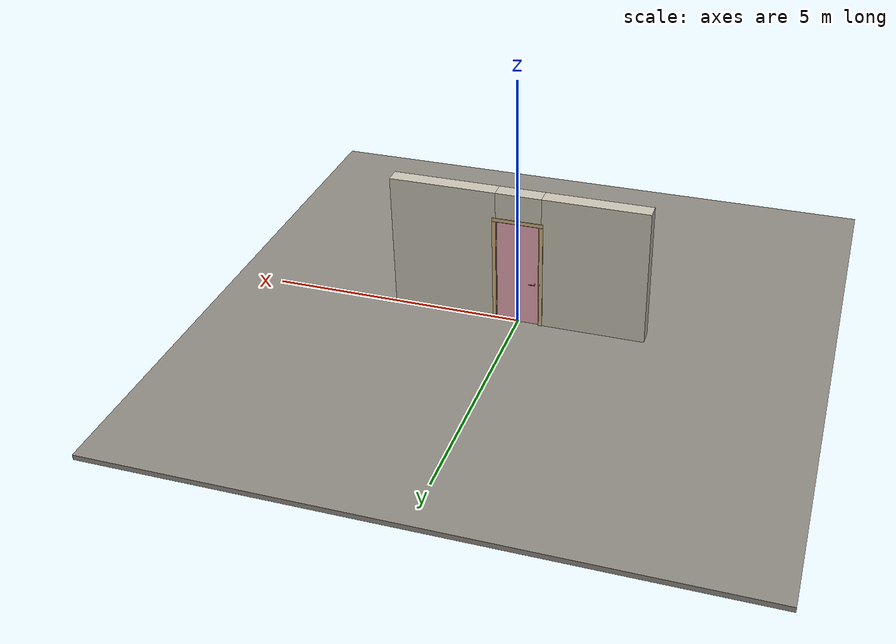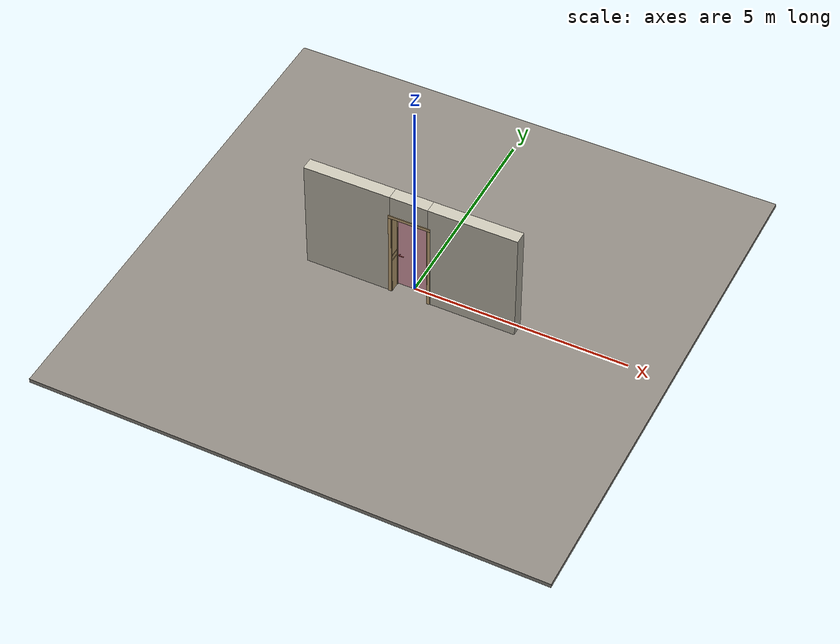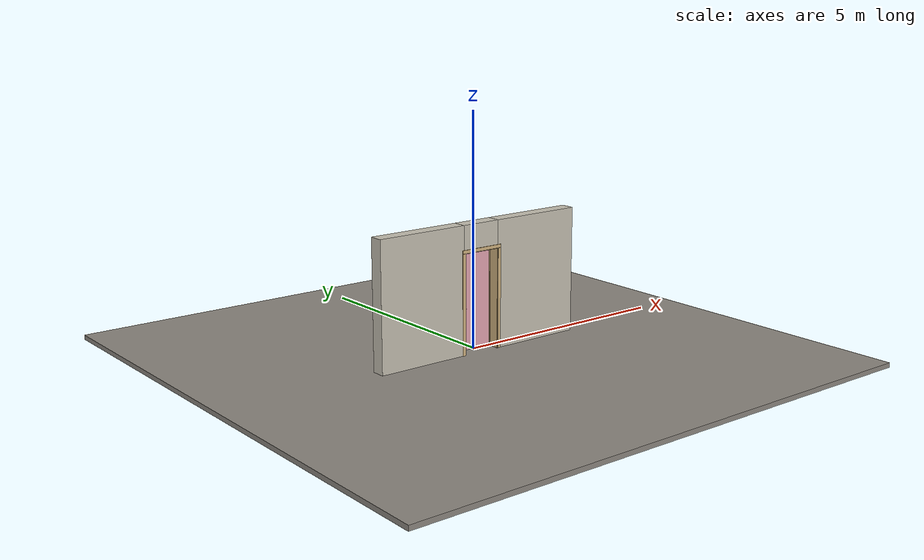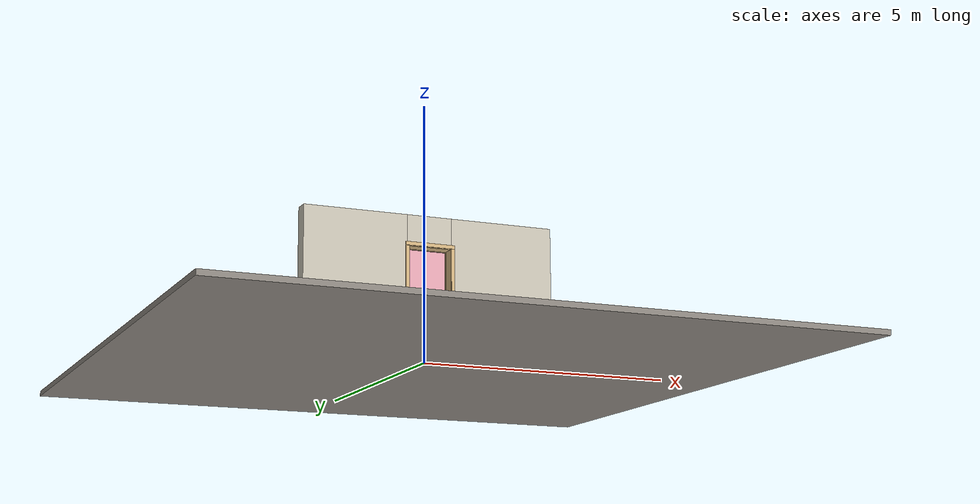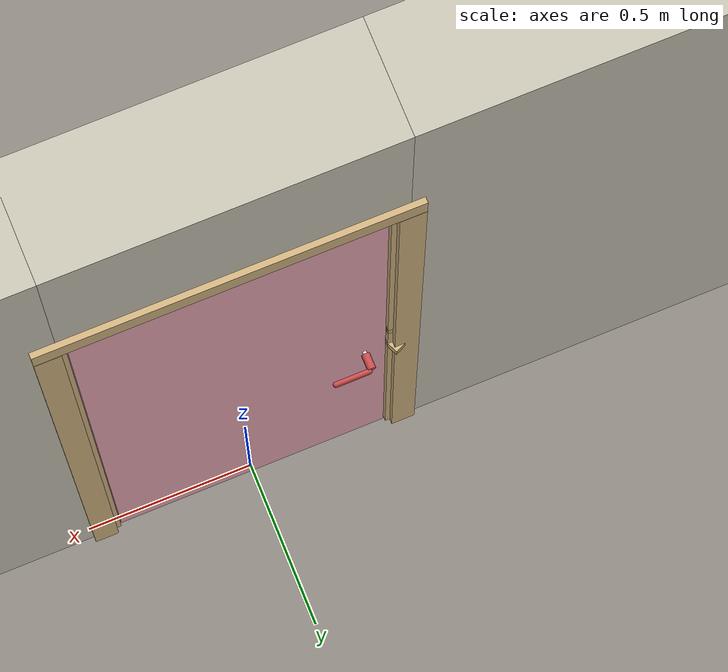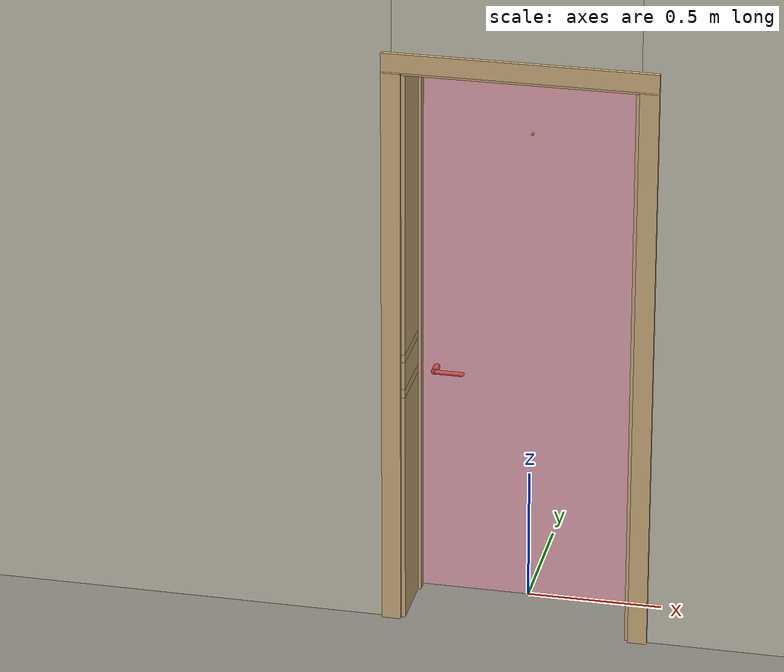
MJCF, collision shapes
<?xml version="1.0" ?>
<mujoco model="db0825_swing_single_full">
  <compiler angle="radian" meshdir="../../hardware" texturedir="../../textures" autolimits="true" inertiafromgeom="false"/>
  <option timestep="0.002" integrator="implicitfast" cone="elliptic" impratio="10" noslip_iterations="3">
    <flag multiccd="enable"/>
  </option>
  <size memory="16M"/>
  <default>
    <geom condim="4" solref="0.005 1" solimp="0.95 0.99 0.001"/>
    <joint solreflimit="0.005 1" solimplimit="0.95 0.99 0.001"/>
    <tendon solreflimit="0.005 1"/>
    <equality solref="0.002 1"/>
  </default>
  <visual>
    <headlight ambient="0.4 0.4 0.4" diffuse="0.7 0.7 0.7" specular="0.2 0.2 0.2"/>
    <quality shadowsize="4096"/>
    <map znear="0.01" zfar="60"/>
  </visual>
  <asset>
    <mesh name="hinge_96510cf394" file="hinge_96510cf394.obj"/>
    <mesh name="hinge_jamb_7fd4ca52b2" file="hinge_jamb_7fd4ca52b2.obj"/>
    <mesh name="lever_748f08efca" file="lever_748f08efca.obj"/>
    <mesh name="wreath_86a3f1bf8b" file="wreath_86a3f1bf8b.obj"/>
    <material name="mat_floor" rgba="0.55 0.53 0.5 1" specular="0.2" shininess="0.15" reflectance="0"/>
    <material name="mat_wall" rgba="0.78 0.76 0.7 1" specular="0.2" shininess="0.1" reflectance="0"/>
    <material name="mat_leaf" rgba="0.9 0.65 0.7 1" specular="0.2" shininess="0.32" reflectance="0"/>
    <material name="mat_hinge" rgba="0.65 0.66 0.68 1" specular="0.74" shininess="0.5" reflectance="0.36"/>
    <material name="mat_op_chrome" rgba="0.9 0.9 0.92 1" specular="0.8" shininess="0.9" reflectance="0.4"/>
    <material name="mat_trim" rgba="0.85 0.66 0.3 1" specular="0.8" shininess="0.75" reflectance="0.4"/>
    <material name="mat_bolt" rgba="0.85 0.66 0.3 1" specular="0.8" shininess="0.75" reflectance="0.4"/>
    <material name="mat_deadbolt" rgba="0.85 0.66 0.3 1" specular="0.8" shininess="0.75" reflectance="0.4"/>
    <material name="mat_frame" rgba="0.82 0.7 0.5 1" specular="0.2" shininess="0.45" reflectance="0"/>
    <material name="mat_wreath" rgba="0.12 0.3 0.12 1" specular="0.2" shininess="0.05" reflectance="0"/>
    <material name="mat_wreath_hook" rgba="0.85 0.66 0.3 1" specular="0.8" shininess="0.75" reflectance="0.4"/>
    <texture name="skybox" type="skybox" builtin="gradient" rgb1="0.6 0.7 0.85" rgb2="0.9 0.92 0.95" width="256" height="256"/>
  </asset>
  <worldbody>
    <light name="sun" pos="1.5 -2.5 4" dir="-0.3 0.5 -0.8" directional="true" diffuse="0.8 0.8 0.8" specular="0.3 0.3 0.3" castshadow="true"/>
    <light name="fill" pos="-1.5 2.5 3" dir="0.3 -0.5 -0.7" directional="true" diffuse="0.35 0.35 0.4" castshadow="false"/>
    <camera name="robot_view" pos="0 -2.763313 1.812087" xyaxes="1 0 0 0 0.26963 0.962964" fovy="52"/>
    <camera name="far_view" pos="0 2.512312 1.812087" xyaxes="-1 0 0 0 -0.26963 0.962964" fovy="52"/>
    <camera name="iso" pos="-2.004737 -2.341263 2.234138" xyaxes="0.741536 -0.670913 0 0.242917 0.268487 0.932151" fovy="46"/>
    <camera name="detail_handle" pos="-0.0764 -0.8725 1.194" xyaxes="0.97561 0.219512 0 -0.070934 0.315262 0.94635" fovy="38"/>
    <geom name="floor" type="box" size="6 6 0.05" pos="0 0 -0.05" material="mat_floor" group="0" contype="1" conaffinity="1" friction="0.8 0.005 0.0001" density="2400"/>
    <geom name="wall_left" type="box" size="1.0205 0.15 1.3735" pos="-1.4795 -0.1255 1.3735" material="mat_wall" group="0" contype="1" conaffinity="1" friction="0.6 0.005 0.0001" density="800"/>
    <geom name="wall_right" type="box" size="1.0355 0.15 1.3735" pos="1.4645 -0.1255 1.3735" material="mat_wall" group="0" contype="1" conaffinity="1" friction="0.6 0.005 0.0001" density="800"/>
    <geom name="wall_header" type="box" size="0.444 0.15 0.2755" pos="-0.015 -0.1255 2.4715" material="mat_wall" group="0" contype="1" conaffinity="1" friction="0.6 0.005 0.0001" density="800"/>
    <geom name="hinge_0_jamb" type="mesh" mesh="hinge_jamb_7fd4ca52b2" pos="0.407 0.0245 0.259" quat="0 0 0 1" material="mat_hinge" group="1" contype="0" conaffinity="0" density="7850"/>
    <geom name="hinge_1_jamb" type="mesh" mesh="hinge_jamb_7fd4ca52b2" pos="0.407 0.0245 1.076" quat="0 0 0 1" material="mat_hinge" group="1" contype="0" conaffinity="0" density="7850"/>
    <geom name="hinge_2_jamb" type="mesh" mesh="hinge_jamb_7fd4ca52b2" pos="0.407 0.0245 1.963" quat="0 0 0 1" material="mat_hinge" group="1" contype="0" conaffinity="0" density="7850"/>
    <geom name="leaf_deadbolt_strike_b" type="box" size="0.0155 0.003 0.0005" pos="-0.4095 0 1.0355" quat="0.5 0.5 0.5 0.5" material="mat_deadbolt" group="1" contype="0" conaffinity="0" density="7800"/>
    <geom name="leaf_deadbolt_strike_l" type="box" size="0.003 0.0155 0.0005" pos="-0.4095 -0.0125 1.054" quat="0.5 0.5 0.5 0.5" material="mat_deadbolt" group="1" contype="0" conaffinity="0" density="7800"/>
    <geom name="leaf_deadbolt_strike_t" type="box" size="0.0155 0.003 0.0005" pos="-0.4095 0 1.0725" quat="0.5 0.5 0.5 0.5" material="mat_deadbolt" group="1" contype="0" conaffinity="0" density="7800"/>
    <geom name="leaf_deadbolt_strike_r" type="box" size="0.003 0.0155 0.0005" pos="-0.4095 0.0125 1.054" quat="0.5 0.5 0.5 0.5" material="mat_deadbolt" group="1" contype="0" conaffinity="0" density="7800"/>
    <geom name="jamb_hinge" type="box" size="0.0095 0.15 1.0735" pos="0.4195 -0.1255 1.0735" material="mat_frame" group="0" contype="1" conaffinity="1" friction="0.6 0.005 0.0001" density="400"/>
    <geom name="strike_914_wall_n" type="box" size="0.0245 0.133825 0.0167" pos="-0.4345 -0.141675 0.914" material="mat_frame" group="0" contype="1" conaffinity="1" friction="0.6 0.005 0.0001" density="400"/>
    <geom name="strike_914_wall_p" type="box" size="0.0245 0.008 0.0167" pos="-0.4345 0.01585 0.914" material="mat_frame" group="0" contype="1" conaffinity="1" friction="0.6 0.005 0.0001" density="400"/>
    <geom name="strike_914_ramp" type="box" size="0.0245 0.01649 0.0167" pos="-0.439136 0.028673 0.914" quat="0.977148 0 0 0.212558" material="mat_frame" group="0" contype="1" conaffinity="1" friction="0.12 0.005 0.0001" density="400"/>
    <geom name="strike_914_back" type="box" size="0.01615 0.00785 0.0167" pos="-0.44285 0 0.914" material="mat_frame" group="0" contype="1" conaffinity="1" friction="0.6 0.005 0.0001" density="400"/>
    <geom name="strike_1054_wall_n" type="box" size="0.0245 0.133 0.0155" pos="-0.4345 -0.1425 1.054" material="mat_frame" group="0" contype="1" conaffinity="1" friction="0.6 0.005 0.0001" density="400"/>
    <geom name="strike_1054_wall_p" type="box" size="0.0245 0.0075 0.0155" pos="-0.4345 0.017 1.054" material="mat_frame" group="0" contype="1" conaffinity="1" friction="0.6 0.005 0.0001" density="400"/>
    <geom name="strike_1054_back" type="box" size="0.0098 0.0095 0.0155" pos="-0.4492 0 1.054" material="mat_frame" group="0" contype="1" conaffinity="1" friction="0.6 0.005 0.0001" density="400"/>
    <geom name="jamb_strike_0" type="box" size="0.0245 0.15 0.44865" pos="-0.4345 -0.1255 0.44865" material="mat_frame" group="0" contype="1" conaffinity="1" friction="0.6 0.005 0.0001" density="400"/>
    <geom name="jamb_strike_1" type="box" size="0.0245 0.15 0.0539" pos="-0.4345 -0.1255 0.9846" material="mat_frame" group="0" contype="1" conaffinity="1" friction="0.6 0.005 0.0001" density="400"/>
    <geom name="jamb_strike_2" type="box" size="0.0245 0.15 0.53875" pos="-0.4345 -0.1255 1.60825" material="mat_frame" group="0" contype="1" conaffinity="1" friction="0.6 0.005 0.0001" density="400"/>
    <geom name="jamb_head" type="box" size="0.444 0.15 0.0095" pos="-0.015 -0.1255 2.1565" material="mat_frame" group="0" contype="1" conaffinity="1" friction="0.6 0.005 0.0001" density="400"/>
    <geom name="head_stud" type="box" size="0.444 0.15 0.015" pos="-0.015 -0.1255 2.181" material="mat_wall" group="0" contype="1" conaffinity="1" friction="0.6 0.005 0.0001" density="500"/>
    <geom name="stop_hinge" type="box" size="0.0055 0.016 1.0735" pos="0.4045 -0.034 1.0735" material="mat_frame" group="0" contype="1" conaffinity="1" friction="0.6 0.005 0.0001" density="400"/>
    <geom name="stop_strike" type="box" size="0.0055 0.016 1.0735" pos="-0.4045 -0.034 1.0735" material="mat_frame" group="0" contype="1" conaffinity="1" friction="0.6 0.005 0.0001" density="400"/>
    <geom name="stop_head" type="box" size="0.41 0.016 0.0055" pos="0 -0.034 2.1415" material="mat_frame" group="0" contype="1" conaffinity="1" friction="0.6 0.005 0.0001" density="400"/>
    <geom name="casing_l_n" type="box" size="0.035 0.008 1.083" pos="-0.459 -0.2835 1.0735" material="mat_frame" group="2" contype="0" conaffinity="0" density="400"/>
    <geom name="casing_r_n" type="box" size="0.035 0.008 1.083" pos="0.459 -0.2835 1.0735" material="mat_frame" group="2" contype="0" conaffinity="0" density="400"/>
    <geom name="casing_h_n" type="box" size="0.494 0.008 0.035" pos="0 -0.2835 2.196" material="mat_frame" group="2" contype="0" conaffinity="0" density="400"/>
    <geom name="casing_l_p" type="box" size="0.035 0.008 1.083" pos="-0.459 0.0325 1.0735" material="mat_frame" group="2" contype="0" conaffinity="0" density="400"/>
    <geom name="casing_r_p" type="box" size="0.035 0.008 1.083" pos="0.459 0.0325 1.0735" material="mat_frame" group="2" contype="0" conaffinity="0" density="400"/>
    <geom name="casing_h_p" type="box" size="0.494 0.008 0.035" pos="0 0.0325 2.196" material="mat_frame" group="2" contype="0" conaffinity="0" density="400"/>
    <site name="approach_point" pos="0 -1.5 0" quat="1 0 0 0" size="0.05" rgba="0.2 0.9 0.2 0.5" group="4"/>
    <site name="goal_point" pos="0 1.5 0" quat="1 0 0 0" size="0.05" rgba="0.2 0.9 0.2 0.5" group="4"/>
    <site name="door_plane_center" pos="0 0 1.0735" quat="1 0 0 0" size="0.02" rgba="0.2 0.9 0.2 0.5" group="4"/>
    <body name="leaf" pos="0.41 0 0">
      <inertial pos="-0.399973 -0.005772 1.131017" mass="15.956519" quat="0.501453 -0.498893 0.496672 0.502959" diaginertia="0.882188102 6.04688646 6.913340966"/>
      <joint name="leaf_hinge" type="hinge" axis="0 0 -1" pos="-0.003 0.0245 0" limited="true" range="0 2.356194" damping="0.218374" frictionloss="3.827657" armature="0.02"/>
      <geom name="leaf_slab" type="box" size="0.4065 0.0175 1.067" pos="-0.4095 0 1.076" material="mat_leaf" group="0" contype="1" conaffinity="1" friction="0.35 0.005 0.0001" density="1"/>
      <geom name="hinge_0" type="mesh" mesh="hinge_96510cf394" pos="-0.003 0.0245 0.259" quat="0 0 0 1" material="mat_hinge" group="1" contype="0" conaffinity="0" density="7850"/>
      <geom name="hinge_1" type="mesh" mesh="hinge_96510cf394" pos="-0.003 0.0245 1.076" quat="0 0 0 1" material="mat_hinge" group="1" contype="0" conaffinity="0" density="7850"/>
      <geom name="hinge_2" type="mesh" mesh="hinge_96510cf394" pos="-0.003 0.0245 1.963" quat="0 0 0 1" material="mat_hinge" group="1" contype="0" conaffinity="0" density="7850"/>
      <geom name="leaf_latch_bolt_faceplate" type="box" size="0.0006 0.01235 0.0267" pos="-0.8154 0 0.914" material="mat_bolt" group="1" contype="0" conaffinity="0" density="8500"/>
      <geom name="leaf_deadbolt_faceplate" type="box" size="0.0006 0.014 0.0245" pos="-0.8154 0 1.054" material="mat_deadbolt" group="1" contype="0" conaffinity="0" density="8500"/>
      <geom name="wreath" type="mesh" mesh="wreath_86a3f1bf8b" pos="-0.4095 -0.0175 1.67352" quat="0 0 -0.707107 0.707107" material="mat_wreath" group="2" contype="0" conaffinity="0" density="200"/>
      <geom name="wreath_hook" type="cylinder" size="0.004 0.008" pos="-0.4095 -0.0245 1.86152" quat="0.707107 -0.707107 0 0" material="mat_wreath_hook" group="2" contype="0" conaffinity="0" density="8500"/>
      <site name="leaf_edge_mid" pos="-0.816 0 1.067" quat="1 0 0 0" size="0.02" rgba="0.2 0.9 0.2 0.5" group="4"/>
      <body name="leaf_handle" pos="-0.756 0 0.914">
        <inertial pos="0.024417 0 0" mass="0.839807" quat="0.707107 0 0 -0.707107" diaginertia="0.001182467 0.002815434 0.003861215"/>
        <joint name="leaf_handle_hinge" type="hinge" axis="0 1 0" limited="true" range="0 0.87" damping="0.205084" frictionloss="0.04" stiffness="0.9" springref="-0.444444" armature="0.01"/>
        <geom name="leaf_handle_spindle" type="cylinder" size="0.006 0.0255" pos="0 0 0" quat="0.707107 -0.707107 0 0" material="mat_op_chrome" group="1" contype="0" conaffinity="0" density="7850"/>
        <geom name="leaf_handle_lever_n" type="mesh" mesh="lever_748f08efca" pos="0 -0.0175 0" quat="0 0 -0.707107 0.707107" material="mat_op_chrome" group="1" contype="0" conaffinity="0" density="3000"/>
        <geom name="leaf_handle_lever_col_n" type="capsule" size="0.008 0.048" pos="0.056 -0.0725 0" quat="0.707107 0 0.707107 0" material="mat_op_chrome" group="3" contype="1" conaffinity="1" rgba="0.8 0.3 0.3 0.25" friction="0.7 0.01 0.0001" density="3000"/>
        <geom name="leaf_handle_hub_col_n" type="cylinder" size="0.012 0.022" pos="0 -0.0475 0" quat="0.707107 -0.707107 0 0" material="mat_op_chrome" group="3" contype="1" conaffinity="1" rgba="0.8 0.3 0.3 0.25" friction="0.6 0.005 0.0001" density="3000"/>
        <geom name="leaf_handle_lever_p" type="mesh" mesh="lever_748f08efca" pos="0 0.0175 0" quat="0 0 0.707107 0.707107" material="mat_op_chrome" group="1" contype="0" conaffinity="0" density="3000"/>
        <geom name="leaf_handle_lever_col_p" type="capsule" size="0.008 0.048" pos="0.056 0.0725 0" quat="0.707107 0 0.707107 0" material="mat_op_chrome" group="3" contype="1" conaffinity="1" rgba="0.8 0.3 0.3 0.25" friction="0.7 0.01 0.0001" density="3000"/>
        <geom name="leaf_handle_hub_col_p" type="cylinder" size="0.012 0.022" pos="0 0.0475 0" quat="0.707107 -0.707107 0 0" material="mat_op_chrome" group="3" contype="1" conaffinity="1" rgba="0.8 0.3 0.3 0.25" friction="0.6 0.005 0.0001" density="3000"/>
        <site name="leaf_handle_grip_n" pos="0.0896 -0.0725 0" quat="1 0 0 0" size="0.012" rgba="0.2 0.9 0.2 0.5" group="4"/>
        <site name="leaf_handle_grip_p" pos="0.0896 0.0725 0" quat="1 0 0 0" size="0.012" rgba="0.2 0.9 0.2 0.5" group="4"/>
      </body>
      <body name="leaf_latch_bolt" pos="-0.816 0 0.914">
        <inertial pos="0.00865 0 0" mass="0.041419" quat="0.92388 0.382683 0 0" diaginertia="0.000000798 0.000005598 0.000005598"/>
        <joint name="leaf_latch_bolt_slide" type="slide" axis="1 0 0" limited="true" range="0 0.0127" damping="2" frictionloss="0.3" stiffness="300" springref="-0.008333" armature="0.1"/>
        <geom name="leaf_latch_bolt_capsule" type="capsule" size="0.00635 0.015" pos="0.00865 0 0" quat="0.707107 0 -0.707107 0" material="mat_bolt" group="0" contype="1" conaffinity="1" friction="0.2 0.005 0.0001" density="8500"/>
      </body>
      <body name="leaf_deadbolt" pos="-0.816 0 1.054">
        <inertial pos="0.0023 0 0" mass="0.18836" quat="0 0 0.707107 0.707107" diaginertia="0.000013829 0.000052194 0.000057986"/>
        <geom name="leaf_deadbolt_box" type="box" size="0.0277 0.008 0.0125" pos="0.0023 0 0" material="mat_deadbolt" group="0" contype="1" conaffinity="1" friction="0.3 0.005 0.0001" density="8500"/>
      </body>
    </body>
  </worldbody>
  <tendon>
    <fixed name="leaf_latch_bolt_coupling" limited="true" range="0 10">
      <joint joint="leaf_latch_bolt_slide" coef="1"/>
      <joint joint="leaf_handle_hinge" coef="-0.016076"/>
    </fixed>
  </tendon>
  <sensor>
    <jointpos name="leaf_hinge_pos" joint="leaf_hinge"/>
    <jointvel name="leaf_hinge_vel" joint="leaf_hinge"/>
    <jointpos name="leaf_handle_hinge_pos" joint="leaf_handle_hinge"/>
    <jointvel name="leaf_handle_hinge_vel" joint="leaf_handle_hinge"/>
    <jointpos name="leaf_latch_bolt_slide_pos" joint="leaf_latch_bolt_slide"/>
    <jointvel name="leaf_latch_bolt_slide_vel" joint="leaf_latch_bolt_slide"/>
  </sensor>
</mujoco>
